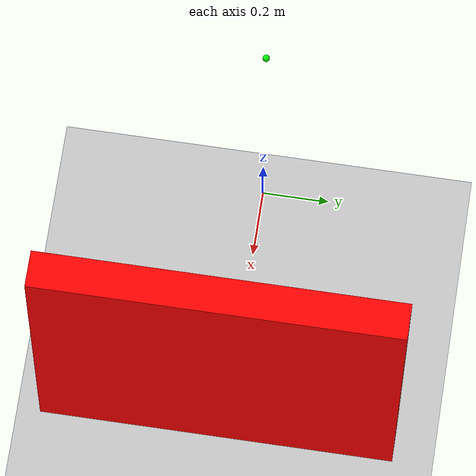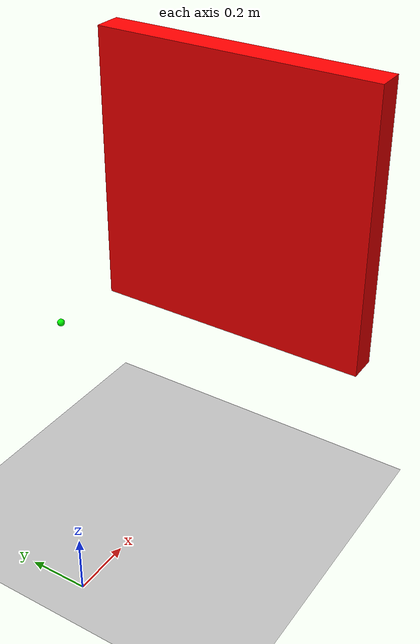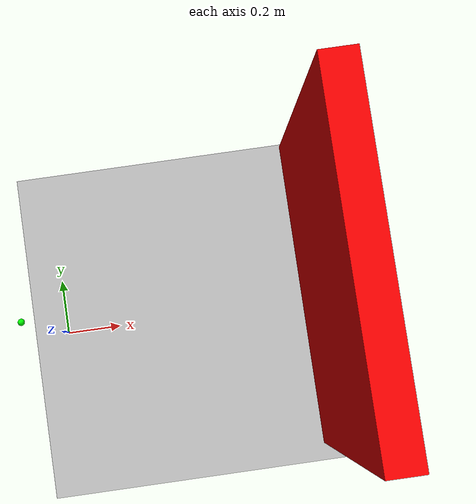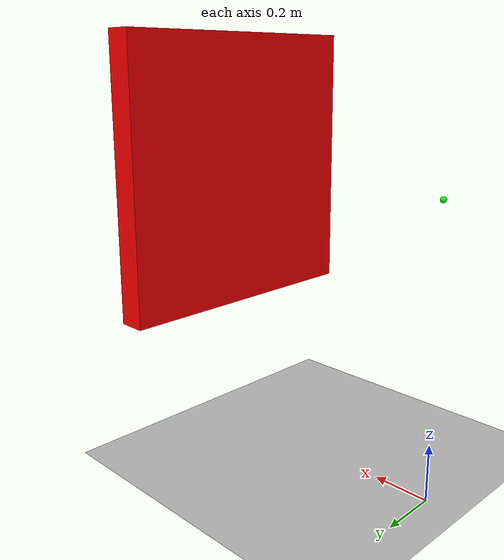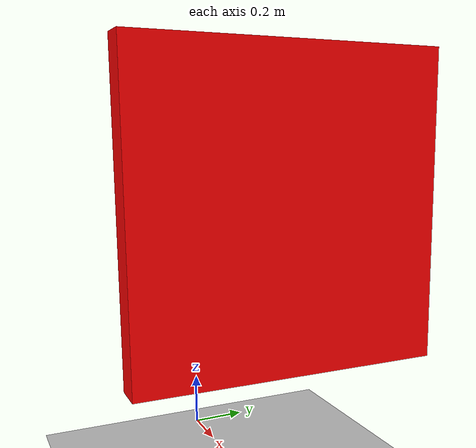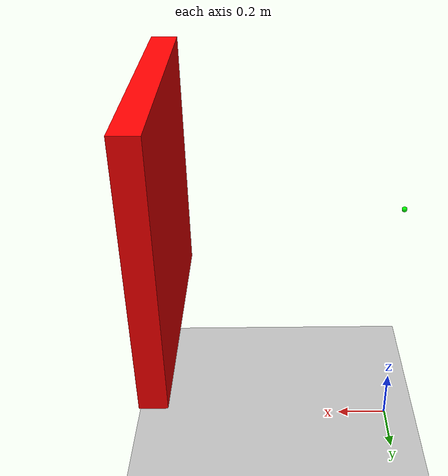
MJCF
<mujoco model="Ball sliding along x-axis">
  <worldbody>
    <light diffuse=".5 .5 .5" pos="0 0 3" dir="0 0 -1"/>
    <geom type="plane" size="2 2 0.1" rgba=".75 .75 .75 1"/>

    <body name="ball" pos="0 0 1">
      <joint name="ball_slide_x" type="slide" axis="1 0 0" range="-2 2"/>
      <geom type="sphere" size="0.01" rgba="0 1 0 1"/>
    </body>

    <!-- Obstacle that lies from x = 0.85 .. 0.95 -->
    <geom name="wall_obstacle" type="box" pos="0.9 0 1" size="0.05 0.5 0.5" rgba="1 0 0 1"/>
  </worldbody>
</mujoco>
